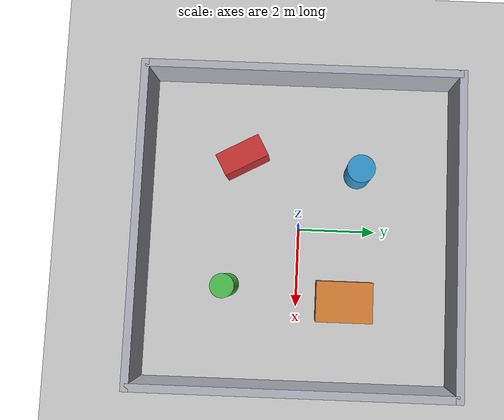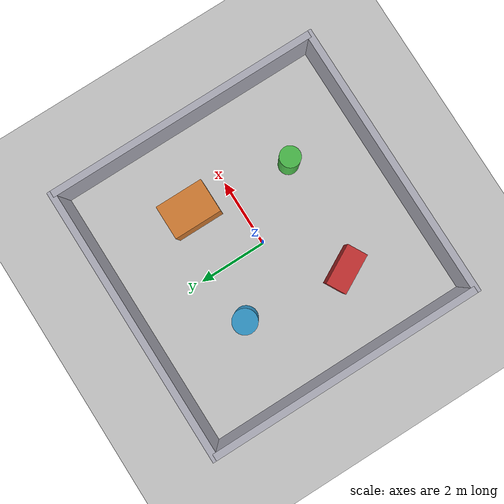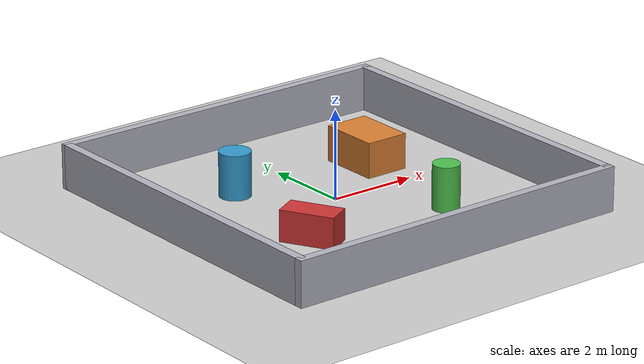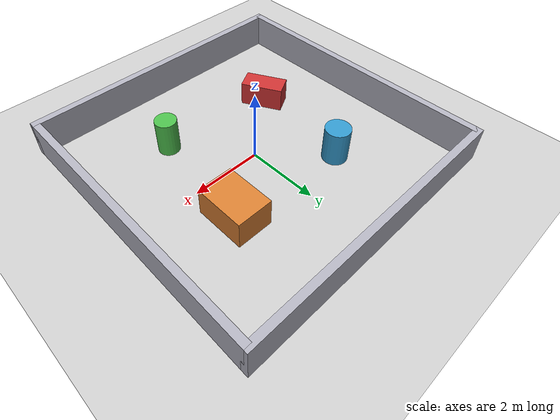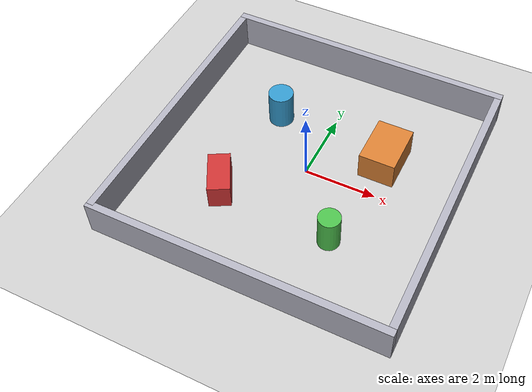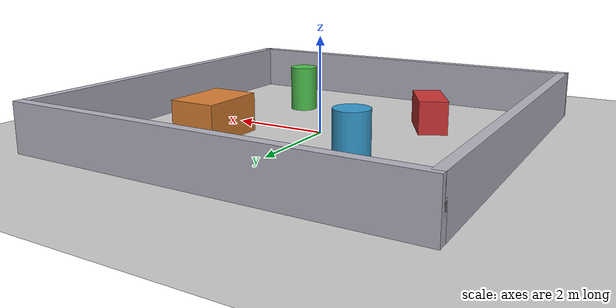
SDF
<?xml version="1.0" ?>
<sdf version="1.6">
  <world name="world_a_basic">
    <!-- Penerangan Global -->
    <include>
      <uri>model://sun</uri>
    </include>
    <!-- Bidang Tanah / Lantai -->
    <include>
      <uri>model://ground_plane</uri>
    </include>

    <!-- Pengaturan Fisika Real-Time -->
    <physics type="ode">
      <real_time_update_rate>1000.0</real_time_update_rate>
      <max_step_size>0.001</max_step_size>
      <real_time_factor>1.0</real_time_factor>
    </physics>

    <!-- ================= DINDING PEMBATAS RUANGAN (8m x 8m x 1m) ================= -->
    <!-- Dinding Utara -->
    <model name="wall_north">
      <static>true</static>
      <pose>0 4.0 0.5 0 0 0</pose>
      <link name="link">
        <collision name="col">
          <geometry><box><size>8.2 0.2 1.0</size></box></geometry>
        </collision>
        <visual name="vis">
          <geometry><box><size>8.2 0.2 1.0</size></box></geometry>
          <material><ambient>0.7 0.7 0.75 1</ambient><diffuse>0.7 0.7 0.75 1</diffuse></material>
        </visual>
      </link>
    </model>

    <!-- Dinding Selatan -->
    <model name="wall_south">
      <static>true</static>
      <pose>0 -4.0 0.5 0 0 0</pose>
      <link name="link">
        <collision name="col">
          <geometry><box><size>8.2 0.2 1.0</size></box></geometry>
        </collision>
        <visual name="vis">
          <geometry><box><size>8.2 0.2 1.0</size></box></geometry>
          <material><ambient>0.7 0.7 0.75 1</ambient><diffuse>0.7 0.7 0.75 1</diffuse></material>
        </visual>
      </link>
    </model>

    <!-- Dinding Timur -->
    <model name="wall_east">
      <static>true</static>
      <pose>4.0 0 0.5 0 0 0</pose>
      <link name="link">
        <collision name="col">
          <geometry><box><size>0.2 8.0 1.0</size></box></geometry>
        </collision>
        <visual name="vis">
          <geometry><box><size>0.2 8.0 1.0</size></box></geometry>
          <material><ambient>0.7 0.7 0.75 1</ambient><diffuse>0.7 0.7 0.75 1</diffuse></material>
        </visual>
      </link>
    </model>

    <!-- Dinding Barat -->
    <model name="wall_west">
      <static>true</static>
      <pose>-4.0 0 0.5 0 0 0</pose>
      <link name="link">
        <collision name="col">
          <geometry><box><size>0.2 8.0 1.0</size></box></geometry>
        </collision>
        <visual name="vis">
          <geometry><box><size>0.2 8.0 1.0</size></box></geometry>
          <material><ambient>0.7 0.7 0.75 1</ambient><diffuse>0.7 0.7 0.75 1</diffuse></material>
        </visual>
      </link>
    </model>

    <!-- ================= RINTANGAN DASAR UNTUK LATIHAN PEMETAAN ================= -->
    <!-- Rintangan 1: Silinder Pilar Tengah Kiri -->
    <model name="pillar_cylinder_1">
      <static>true</static>
      <pose>-1.5 1.5 0.5 0 0 0</pose>
      <link name="link">
        <collision name="col"><geometry><cylinder><radius>0.35</radius><length>1.0</length></cylinder></geometry></collision>
        <visual name="vis">
          <geometry><cylinder><radius>0.35</radius><length>1.0</length></cylinder></geometry>
          <material><ambient>0.2 0.6 0.8 1</ambient><diffuse>0.2 0.6 0.8 1</diffuse></material>
        </visual>
      </link>
    </model>

    <!-- Rintangan 2: Kotak Meja Tengah Kanan -->
    <model name="obstacle_box_1">
      <static>true</static>
      <pose>1.8 1.2 0.4 0 0 0</pose>
      <link name="link">
        <collision name="col"><geometry><box><size>1.0 1.4 0.8</size></box></geometry></collision>
        <visual name="vis">
          <geometry><box><size>1.0 1.4 0.8</size></box></geometry>
          <material><ambient>0.85 0.5 0.2 1</ambient><diffuse>0.85 0.5 0.2 1</diffuse></material>
        </visual>
      </link>
    </model>

    <!-- Rintangan 3: Silinder Pilar Bawah Kanan -->
    <model name="pillar_cylinder_2">
      <static>true</static>
      <pose>1.5 -1.8 0.5 0 0 0</pose>
      <link name="link">
        <collision name="col"><geometry><cylinder><radius>0.3</radius><length>1.0</length></cylinder></geometry></collision>
        <visual name="vis">
          <geometry><cylinder><radius>0.3</radius><length>1.0</length></cylinder></geometry>
          <material><ambient>0.3 0.75 0.3 1</ambient><diffuse>0.3 0.75 0.3 1</diffuse></material>
        </visual>
      </link>
    </model>

    <!-- Rintangan 4: Kotak Partisi Bawah Kiri -->
    <model name="obstacle_box_2">
      <static>true</static>
      <pose>-1.8 -1.5 0.35 0 0 0.5</pose>
      <link name="link">
        <collision name="col"><geometry><box><size>0.6 1.2 0.7</size></box></geometry></collision>
        <visual name="vis">
          <geometry><box><size>0.6 1.2 0.7</size></box></geometry>
          <material><ambient>0.8 0.2 0.2 1</ambient><diffuse>0.8 0.2 0.2 1</diffuse></material>
        </visual>
      </link>
    </model>

  </world>
</sdf>
